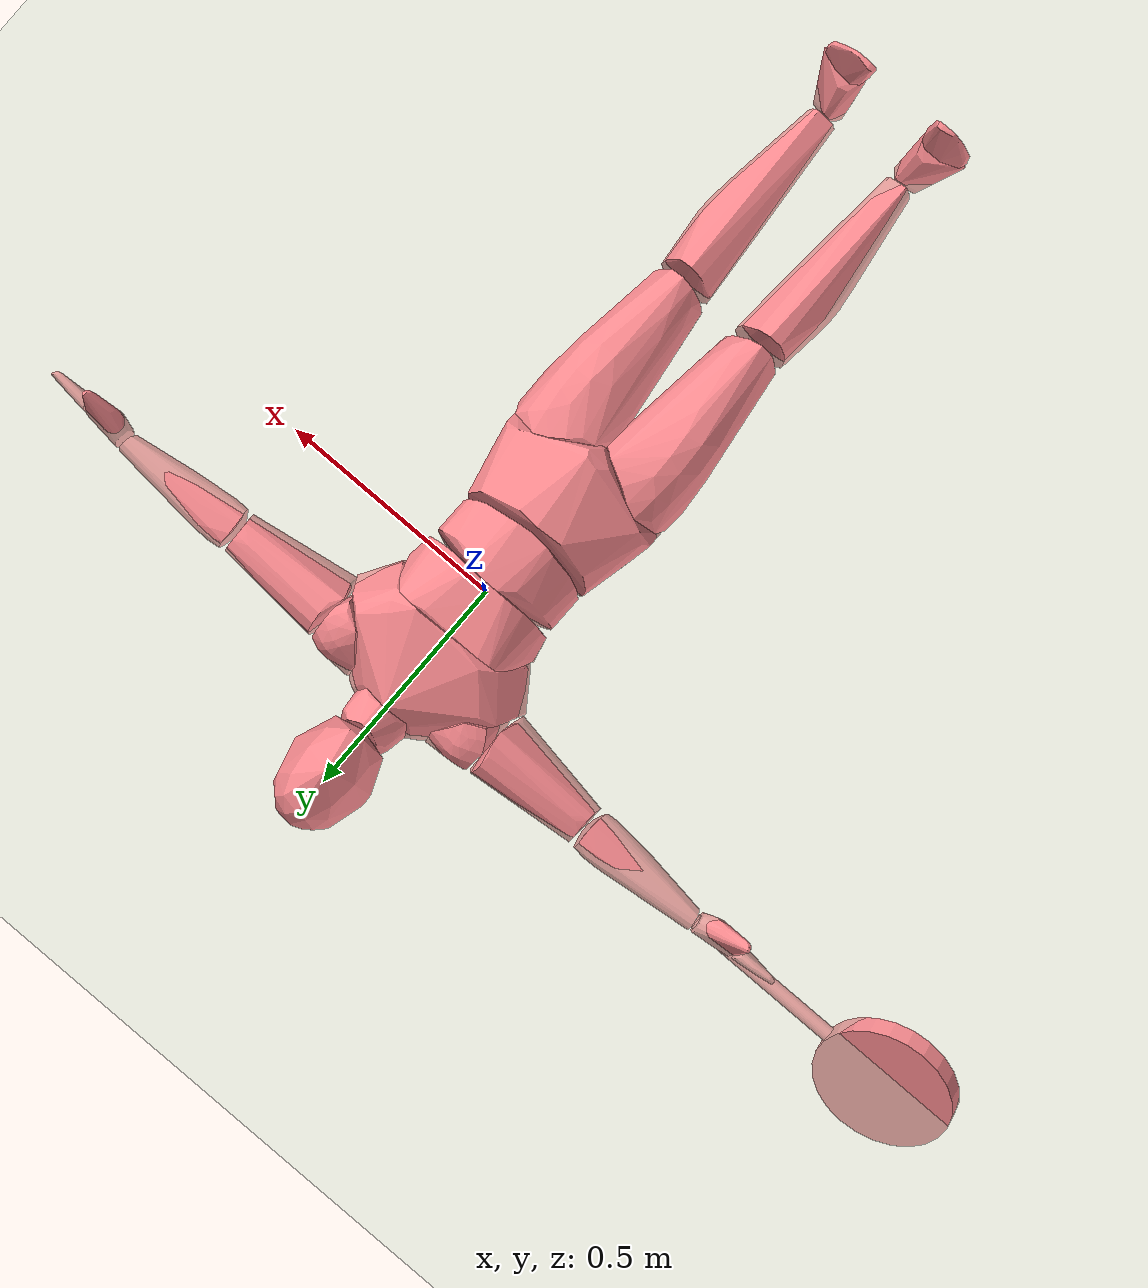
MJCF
<!-- Real Djokovic with gender=male (1.88m) semi-western grip, heavy racket head (x2 mass)-->
<mujoco model="humanoid">
  <compiler angle="degree" inertiafromgeom="true" coordinate="local"/>
  <visual>
    <headlight ambient=".4 .4 .4" diffuse=".8 .8 .8" specular="0.3 0.3 0.3"/>
    <map znear=".01"/>
    <quality shadowsize="2048"/>
  </visual>
  <default>
    <joint damping="0.0" armature="0.01" stiffness="0.0" limited="true"/>
    <geom conaffinity="7" condim="1" contype="7" margin="0.001" rgba=".98 .54 .56 1."/>
    <default class="actor1">
      <geom rgba="0.8 0.6 0.4 0.5"/>
    </default>
    <default class="actor2">
      <geom rgba="0.2 0.706 0.0 0.5"/>
    </default>
  </default>
  <statistic extent="3" center="0 0 1"/>
  <option timestep="0.00222222222"/>
  <asset>
    <texture type="skybox" builtin="gradient" rgb1=".4 .5 .6" rgb2="0 0 0" width="100" height="100"/>
    <texture builtin="flat" height="1278" mark="cross" markrgb="1 1 1" name="texgeom" random="0.01" rgb1="0.8 0.6 0.4" rgb2="0.8 0.6 0.4" type="cube" width="127"/>
    <texture name="grid_new" type="2d" builtin="checker" rgb1=".1 .3 .2" rgb2=".2 .4 .3" width="1000" height="1000" mark="none" markrgb=".8 .6 .4"/>
    <material name="grid_new" texture="grid_new" texrepeat="0.2 0.2" texuniform="true" reflectance=".2"/>
    <mesh file="mesh/49e39740-d0fd-44c2-ad1d-5dcbae398375/geom/Pelvis.stl" name="Pelvis_mesh"/>
    <mesh file="mesh/49e39740-d0fd-44c2-ad1d-5dcbae398375/geom/L_Hip.stl" name="L_Hip_mesh"/>
    <mesh file="mesh/49e39740-d0fd-44c2-ad1d-5dcbae398375/geom/R_Hip.stl" name="R_Hip_mesh"/>
    <mesh file="mesh/49e39740-d0fd-44c2-ad1d-5dcbae398375/geom/Torso.stl" name="Torso_mesh"/>
    <mesh file="mesh/49e39740-d0fd-44c2-ad1d-5dcbae398375/geom/L_Knee.stl" name="L_Knee_mesh"/>
    <mesh file="mesh/49e39740-d0fd-44c2-ad1d-5dcbae398375/geom/R_Knee.stl" name="R_Knee_mesh"/>
    <mesh file="mesh/49e39740-d0fd-44c2-ad1d-5dcbae398375/geom/Spine.stl" name="Spine_mesh"/>
    <mesh file="mesh/49e39740-d0fd-44c2-ad1d-5dcbae398375/geom/L_Ankle.stl" name="L_Ankle_mesh"/>
    <mesh file="mesh/49e39740-d0fd-44c2-ad1d-5dcbae398375/geom/R_Ankle.stl" name="R_Ankle_mesh"/>
    <mesh file="mesh/49e39740-d0fd-44c2-ad1d-5dcbae398375/geom/Chest.stl" name="Chest_mesh"/>
    <mesh file="mesh/49e39740-d0fd-44c2-ad1d-5dcbae398375/geom/L_Toe.stl" name="L_Toe_mesh"/>
    <mesh file="mesh/49e39740-d0fd-44c2-ad1d-5dcbae398375/geom/R_Toe.stl" name="R_Toe_mesh"/>
    <mesh file="mesh/49e39740-d0fd-44c2-ad1d-5dcbae398375/geom/Neck.stl" name="Neck_mesh"/>
    <mesh file="mesh/49e39740-d0fd-44c2-ad1d-5dcbae398375/geom/L_Thorax.stl" name="L_Thorax_mesh"/>
    <mesh file="mesh/49e39740-d0fd-44c2-ad1d-5dcbae398375/geom/R_Thorax.stl" name="R_Thorax_mesh"/>
    <mesh file="mesh/49e39740-d0fd-44c2-ad1d-5dcbae398375/geom/Head.stl" name="Head_mesh"/>
    <mesh file="mesh/49e39740-d0fd-44c2-ad1d-5dcbae398375/geom/L_Shoulder.stl" name="L_Shoulder_mesh"/>
    <mesh file="mesh/49e39740-d0fd-44c2-ad1d-5dcbae398375/geom/R_Shoulder.stl" name="R_Shoulder_mesh"/>
    <mesh file="mesh/49e39740-d0fd-44c2-ad1d-5dcbae398375/geom/L_Elbow.stl" name="L_Elbow_mesh"/>
    <mesh file="mesh/49e39740-d0fd-44c2-ad1d-5dcbae398375/geom/R_Elbow.stl" name="R_Elbow_mesh"/>
    <mesh file="mesh/49e39740-d0fd-44c2-ad1d-5dcbae398375/geom/L_Wrist.stl" name="L_Wrist_mesh"/>
    <mesh file="mesh/49e39740-d0fd-44c2-ad1d-5dcbae398375/geom/R_Wrist.stl" name="R_Wrist_mesh"/>
    <mesh file="mesh/49e39740-d0fd-44c2-ad1d-5dcbae398375/geom/L_Hand.stl" name="L_Hand_mesh"/>
    <mesh file="mesh/49e39740-d0fd-44c2-ad1d-5dcbae398375/geom/R_Hand.stl" name="R_Hand_mesh"/>
  </asset>
  <worldbody>
    <light cutoff="100" diffuse="1 1 1" dir="-0 0 -1.3" directional="true" exponent="1" pos="0 0 1.3" specular=".1 .1 .1"/>
    <geom conaffinity="1" condim="3" name="floor" pos="0 0 0" rgba="0.8 0.9 0.8 1" size="100 100 .2" type="plane" material="grid_new"/>
    <body name="Pelvis" pos="-0.0022 -0.2358 0.0239" quat="1.0000 0.0000 0.0000 0.0000">
      <freejoint name="Pelvis"/>
      <geom type="mesh" mesh="Pelvis_mesh" density="900" contype="1" conaffinity="1"/>
      <body name="L_Hip" pos="0.0605 -0.0829 -0.0239" quat="1.0000 0.0000 0.0000 0.0000">
        <joint name="L_Hip_x" type="hinge" pos="0 0 0" axis="1 0 0" stiffness="500" damping="50" armature="0.02" range="-180.0000 180.0000"/>
        <joint name="L_Hip_y" type="hinge" pos="0 0 0" axis="0 1 0" stiffness="500" damping="50" armature="0.02" range="-180.0000 180.0000"/>
        <joint name="L_Hip_z" type="hinge" pos="0 0 0" axis="0 0 1" stiffness="500" damping="50" armature="0.02" range="-180.0000 180.0000"/>
        <geom type="mesh" mesh="L_Hip_mesh" density="900" contype="1" conaffinity="1"/>
        <body name="L_Knee" pos="0.051 -0.4175 0.0079" quat="1.0000 0.0000 0.0000 0.0000">
          <joint name="L_Knee_x" type="hinge" pos="0 0 0" axis="1 0 0" stiffness="500" damping="50" armature="0.02" range="-180.0000 180.0000"/>
          <joint name="L_Knee_y" type="hinge" pos="0 0 0" axis="0 1 0" stiffness="500" damping="50" armature="0.02" range="-180.0000 180.0000"/>
          <joint name="L_Knee_z" type="hinge" pos="0 0 0" axis="0 0 1" stiffness="500" damping="50" armature="0.02" range="-180.0000 180.0000"/>
          <geom type="mesh" mesh="L_Knee_mesh" density="900" contype="1" conaffinity="1"/>
          <body name="L_Ankle" pos="-0.0144 -0.4584 -0.037" quat="1.0000 0.0000 0.0000 0.0000">
            <joint name="L_Ankle_x" type="hinge" pos="0 0 0" axis="1 0 0" stiffness="400" damping="40" armature="0.02" range="-180.0000 180.0000"/>
            <joint name="L_Ankle_y" type="hinge" pos="0 0 0" axis="0 1 0" stiffness="400" damping="40" armature="0.02" range="-180.0000 180.0000"/>
            <joint name="L_Ankle_z" type="hinge" pos="0 0 0" axis="0 0 1" stiffness="400" damping="40" armature="0.02" range="-180.0000 180.0000"/>
            <geom type="mesh" mesh="L_Ankle_mesh" density="900" contype="1" conaffinity="1"/>
            <body name="L_Toe" pos="0.0491 -0.0651 0.1268" quat="1.0000 0.0000 0.0000 0.0000">
              <joint name="L_Toe_x" type="hinge" pos="0 0 0" axis="1 0 0" stiffness="200" damping="20" armature="0.02" range="-180.0000 180.0000"/>
              <joint name="L_Toe_y" type="hinge" pos="0 0 0" axis="0 1 0" stiffness="200" damping="20" armature="0.02" range="-180.0000 180.0000"/>
              <joint name="L_Toe_z" type="hinge" pos="0 0 0" axis="0 0 1" stiffness="200" damping="20" armature="0.02" range="-180.0000 180.0000"/>
              <geom type="mesh" mesh="L_Toe_mesh" density="900" contype="1" conaffinity="1"/>
            </body>
          </body>
        </body>
      </body>
      <body name="R_Hip" pos="-0.0619 -0.0897 -0.0213" quat="1.0000 0.0000 0.0000 0.0000">
        <joint name="R_Hip_x" type="hinge" pos="0 0 0" axis="1 0 0" stiffness="500" damping="50" armature="0.02" range="-180.0000 180.0000"/>
        <joint name="R_Hip_y" type="hinge" pos="0 0 0" axis="0 1 0" stiffness="500" damping="50" armature="0.02" range="-180.0000 180.0000"/>
        <joint name="R_Hip_z" type="hinge" pos="0 0 0" axis="0 0 1" stiffness="500" damping="50" armature="0.02" range="-180.0000 180.0000"/>
        <geom type="mesh" mesh="R_Hip_mesh" density="900" contype="1" conaffinity="1"/>
        <body name="R_Knee" pos="-0.0495 -0.4124 -0.0066" quat="1.0000 0.0000 0.0000 0.0000">
          <joint name="R_Knee_x" type="hinge" pos="0 0 0" axis="1 0 0" stiffness="500" damping="50" armature="0.02" range="-180.0000 180.0000"/>
          <joint name="R_Knee_y" type="hinge" pos="0 0 0" axis="0 1 0" stiffness="500" damping="50" armature="0.02" range="-180.0000 180.0000"/>
          <joint name="R_Knee_z" type="hinge" pos="0 0 0" axis="0 0 1" stiffness="500" damping="50" armature="0.02" range="-180.0000 180.0000"/>
          <geom type="mesh" mesh="R_Knee_mesh" density="900" contype="1" conaffinity="1"/>
          <body name="R_Ankle" pos="0.0193 -0.4509 -0.0348" quat="1.0000 0.0000 0.0000 0.0000">
            <joint name="R_Ankle_x" type="hinge" pos="0 0 0" axis="1 0 0" stiffness="400" damping="40" armature="0.02" range="-180.0000 180.0000"/>
            <joint name="R_Ankle_y" type="hinge" pos="0 0 0" axis="0 1 0" stiffness="400" damping="40" armature="0.02" range="-180.0000 180.0000"/>
            <joint name="R_Ankle_z" type="hinge" pos="0 0 0" axis="0 0 1" stiffness="400" damping="40" armature="0.02" range="-180.0000 180.0000"/>
            <geom type="mesh" mesh="R_Ankle_mesh" density="900" contype="1" conaffinity="1"/>
            <body name="R_Toe" pos="-0.0395 -0.0667 0.1363" quat="1.0000 0.0000 0.0000 0.0000">
              <joint name="R_Toe_x" type="hinge" pos="0 0 0" axis="1 0 0" stiffness="200" damping="20" armature="0.02" range="-180.0000 180.0000"/>
              <joint name="R_Toe_y" type="hinge" pos="0 0 0" axis="0 1 0" stiffness="200" damping="20" armature="0.02" range="-180.0000 180.0000"/>
              <joint name="R_Toe_z" type="hinge" pos="0 0 0" axis="0 0 1" stiffness="200" damping="20" armature="0.02" range="-180.0000 180.0000"/>
              <geom type="mesh" mesh="R_Toe_mesh" density="900" contype="1" conaffinity="1"/>
            </body>
          </body>
        </body>
      </body>
      <body name="Torso" pos="0.0046 0.1203 -0.0362" quat="1.0000 0.0000 0.0000 0.0000">
        <joint name="Torso_x" type="hinge" pos="0 0 0" axis="1 0 0" stiffness="1000" damping="100" armature="0.02" range="-180.0000 180.0000"/>
        <joint name="Torso_y" type="hinge" pos="0 0 0" axis="0 1 0" stiffness="1000" damping="100" armature="0.02" range="-180.0000 180.0000"/>
        <joint name="Torso_z" type="hinge" pos="0 0 0" axis="0 0 1" stiffness="1000" damping="100" armature="0.02" range="-180.0000 180.0000"/>
        <geom type="mesh" mesh="Torso_mesh" density="900" contype="1" conaffinity="1"/>
        <body name="Spine" pos="0.0035 0.1382 0.0272" quat="1.0000 0.0000 0.0000 0.0000">
          <joint name="Spine_x" type="hinge" pos="0 0 0" axis="1 0 0" stiffness="1000" damping="100" armature="0.02" range="-180.0000 180.0000"/>
          <joint name="Spine_y" type="hinge" pos="0 0 0" axis="0 1 0" stiffness="1000" damping="100" armature="0.02" range="-180.0000 180.0000"/>
          <joint name="Spine_z" type="hinge" pos="0 0 0" axis="0 0 1" stiffness="1000" damping="100" armature="0.02" range="-180.0000 180.0000"/>
          <geom type="mesh" mesh="Spine_mesh" density="900" contype="1" conaffinity="1"/>
          <body name="Chest" pos="-0.0022 0.0569 0.0012" quat="1.0000 0.0000 0.0000 0.0000">
            <joint name="Chest_x" type="hinge" pos="0 0 0" axis="1 0 0" stiffness="1000" damping="100" armature="0.02" range="-180.0000 180.0000"/>
            <joint name="Chest_y" type="hinge" pos="0 0 0" axis="0 1 0" stiffness="1000" damping="100" armature="0.02" range="-180.0000 180.0000"/>
            <joint name="Chest_z" type="hinge" pos="0 0 0" axis="0 0 1" stiffness="1000" damping="100" armature="0.02" range="-180.0000 180.0000"/>
            <geom type="mesh" mesh="Chest_mesh" density="900" contype="1" conaffinity="1"/>
            <body name="Neck" pos="-0.0136 0.2211 -0.022" quat="1.0000 0.0000 0.0000 0.0000">
              <joint name="Neck_x" type="hinge" pos="0 0 0" axis="1 0 0" stiffness="100" damping="10" armature="0.02" range="-180.0000 180.0000"/>
              <joint name="Neck_y" type="hinge" pos="0 0 0" axis="0 1 0" stiffness="100" damping="10" armature="0.02" range="-180.0000 180.0000"/>
              <joint name="Neck_z" type="hinge" pos="0 0 0" axis="0 0 1" stiffness="100" damping="10" armature="0.02" range="-180.0000 180.0000"/>
              <geom type="mesh" mesh="Neck_mesh" density="900" contype="1" conaffinity="1"/>
              <body name="Head" pos="0.0113 0.1028 0.0563" quat="1.0000 0.0000 0.0000 0.0000">
                <joint name="Head_x" type="hinge" pos="0 0 0" axis="1 0 0" stiffness="100" damping="10" armature="0.02" range="-180.0000 180.0000"/>
                <joint name="Head_y" type="hinge" pos="0 0 0" axis="0 1 0" stiffness="100" damping="10" armature="0.02" range="-180.0000 180.0000"/>
                <joint name="Head_z" type="hinge" pos="0 0 0" axis="0 0 1" stiffness="100" damping="10" armature="0.02" range="-180.0000 180.0000"/>
                <geom type="mesh" mesh="Head_mesh" density="900" contype="1" conaffinity="1"/>
              </body>
            </body>
            <body name="L_Thorax" pos="0.0717 0.1168 -0.0143" quat="1.0000 0.0000 0.0000 0.0000">
              <joint name="L_Thorax_x" type="hinge" pos="0 0 0" axis="1 0 0" stiffness="400" damping="40" armature="0.02" range="-180.0000 180.0000"/>
              <joint name="L_Thorax_y" type="hinge" pos="0 0 0" axis="0 1 0" stiffness="400" damping="40" armature="0.02" range="-180.0000 180.0000"/>
              <joint name="L_Thorax_z" type="hinge" pos="0 0 0" axis="0 0 1" stiffness="400" damping="40" armature="0.02" range="-180.0000 180.0000"/>
              <geom type="mesh" mesh="L_Thorax_mesh" density="900" contype="1" conaffinity="1"/>
              <body name="L_Shoulder" pos="0.1225 0.0498 -0.0166" quat="1.0000 0.0000 0.0000 0.0000">
                <joint name="L_Shoulder_x" type="hinge" pos="0 0 0" axis="1 0 0" stiffness="400" damping="40" armature="0.02" range="-180.0000 180.0000"/>
                <joint name="L_Shoulder_y" type="hinge" pos="0 0 0" axis="0 1 0" stiffness="400" damping="40" armature="0.02" range="-180.0000 180.0000"/>
                <joint name="L_Shoulder_z" type="hinge" pos="0 0 0" axis="0 0 1" stiffness="400" damping="40" armature="0.02" range="-180.0000 180.0000"/>
                <geom type="mesh" mesh="L_Shoulder_mesh" density="900" contype="1" conaffinity="1"/>
                <body name="L_Elbow" pos="0.2713 -0.0215 -0.0239" quat="1.0000 0.0000 0.0000 0.0000">
                  <joint name="L_Elbow_x" type="hinge" pos="0 0 0" axis="1 0 0" stiffness="300" damping="30" armature="0.02" range="-720.0000 720.0000"/>
                  <joint name="L_Elbow_y" type="hinge" pos="0 0 0" axis="0 1 0" stiffness="300" damping="30" armature="0.02" range="-720.0000 720.0000"/>
                  <joint name="L_Elbow_z" type="hinge" pos="0 0 0" axis="0 0 1" stiffness="300" damping="30" armature="0.02" range="-720.0000 720.0000"/>
                  <geom type="mesh" mesh="L_Elbow_mesh" density="900" contype="1" conaffinity="1"/>
                  <body name="L_Wrist" pos="0.2809 0.015 -0.006" quat="1.0000 0.0000 0.0000 0.0000">
                    <joint name="L_Wrist_x" type="hinge" pos="0 0 0" axis="1 0 0" stiffness="100" damping="10" armature="0.02" range="-180.0000 180.0000"/>
                    <joint name="L_Wrist_y" type="hinge" pos="0 0 0" axis="0 1 0" stiffness="100" damping="10" armature="0.02" range="-180.0000 180.0000"/>
                    <joint name="L_Wrist_z" type="hinge" pos="0 0 0" axis="0 0 1" stiffness="100" damping="10" armature="0.02" range="-180.0000 180.0000"/>
                    <geom type="mesh" mesh="L_Wrist_mesh" density="900" contype="1" conaffinity="1"/>
                    <body name="L_Hand" pos="0.0913 -0.0115 -0.0167" quat="1.0000 0.0000 0.0000 0.0000">
                      <joint name="L_Hand_x" type="hinge" pos="0 0 0" axis="1 0 0" stiffness="100" damping="10" armature="0.02" range="-180.0000 180.0000"/>
                      <joint name="L_Hand_y" type="hinge" pos="0 0 0" axis="0 1 0" stiffness="100" damping="10" armature="0.02" range="-180.0000 180.0000"/>
                      <joint name="L_Hand_z" type="hinge" pos="0 0 0" axis="0 0 1" stiffness="100" damping="10" armature="0.02" range="-180.0000 180.0000"/>
                      <geom type="mesh" mesh="L_Hand_mesh" density="900" contype="1" conaffinity="1"/>
                    </body>
                  </body>
                </body>
              </body>
            </body>
            <body name="R_Thorax" pos="-0.0826 0.1147 -0.0209" quat="1.0000 0.0000 0.0000 0.0000">
              <joint name="R_Thorax_x" type="hinge" pos="0 0 0" axis="1 0 0" stiffness="400" damping="40" armature="0.02" range="-180.0000 180.0000"/>
              <joint name="R_Thorax_y" type="hinge" pos="0 0 0" axis="0 1 0" stiffness="400" damping="40" armature="0.02" range="-180.0000 180.0000"/>
              <joint name="R_Thorax_z" type="hinge" pos="0 0 0" axis="0 0 1" stiffness="400" damping="40" armature="0.02" range="-180.0000 180.0000"/>
              <geom type="mesh" mesh="R_Thorax_mesh" density="900" contype="1" conaffinity="1"/>
              <body name="R_Shoulder" pos="-0.1138 0.0525 -0.0064" quat="1.0000 0.0000 0.0000 0.0000">
                <joint name="R_Shoulder_x" type="hinge" pos="0 0 0" axis="1 0 0" stiffness="400" damping="40" armature="0.02" range="-180.0000 180.0000"/>
                <joint name="R_Shoulder_y" type="hinge" pos="0 0 0" axis="0 1 0" stiffness="400" damping="40" armature="0.02" range="-180.0000 180.0000"/>
                <joint name="R_Shoulder_z" type="hinge" pos="0 0 0" axis="0 0 1" stiffness="400" damping="40" armature="0.02" range="-180.0000 180.0000"/>
                <geom type="mesh" mesh="R_Shoulder_mesh" density="900" contype="1" conaffinity="1"/>
                <body name="R_Elbow" pos="-0.2758 -0.0235 -0.0336" quat="1.0000 0.0000 0.0000 0.0000">
                  <joint name="R_Elbow_x" type="hinge" pos="0 0 0" axis="1 0 0" stiffness="300" damping="30" armature="0.02" range="-180.0000 90.0000"/>
                  <joint name="R_Elbow_y" type="hinge" pos="0 0 0" axis="0 1 0" stiffness="300" damping="30" armature="0.02" range="-720.0000 720.0000"/>
                  <joint name="R_Elbow_z" type="hinge" pos="0 0 0" axis="0 0 1" stiffness="300" damping="30" armature="0.02" range="-720.0000 720.0000"/>
                  <geom type="mesh" mesh="R_Elbow_mesh" density="900" contype="1" conaffinity="1"/>
                  <body name="R_Wrist" pos="-0.2854 0.0078 -0.0049" quat="1.0000 0.0000 0.0000 0.0000">
                    <joint name="R_Wrist_x" type="hinge" pos="0 0 0" axis="1 0 0" stiffness="100" damping="10" armature="0.02" range="-10.0000 10.0000"/>
                    <joint name="R_Wrist_y" type="hinge" pos="0 0 0" axis="0 1 0" stiffness="100" damping="10" armature="0.02" range="-45.0000 45.0000"/>
                    <joint name="R_Wrist_z" type="hinge" pos="0 0 0" axis="0 0 1" stiffness="100" damping="10" armature="0.02" range="-90.0000 90.0000"/>
                    <geom type="mesh" mesh="R_Wrist_mesh" density="900" contype="1" conaffinity="1"/>
                    <body name="R_Hand" pos="-0.0926 -0.0091 -0.0109" quat="1.0000 0.0000 0.0000 0.0000">
                      <joint name="R_Hand_x" type="hinge" pos="0 0 0" axis="1 0 0" stiffness="100" damping="10" armature="0.02" range="-180.0000 180.0000"/>
                      <joint name="R_Hand_y" type="hinge" pos="0 0 0" axis="0 1 0" stiffness="100" damping="10" armature="0.02" range="-180.0000 180.0000"/>
                      <joint name="R_Hand_z" type="hinge" pos="0 0 0" axis="0 0 1" stiffness="100" damping="10" armature="0.02" range="-180.0000 180.0000"/>
                      <geom type="mesh" mesh="R_Hand_mesh" density="900" contype="1" conaffinity="1"/>
                    </body>
                    <body name="Racket" pos="-0.5 0 0">
                      <geom type="cylinder" fromto="0.5 0 0 0.15 0 0" size="0.016" density="500"/>
                      <geom type="cylinder" fromto="0 -0.015 -0.015 0 0.015 0.015" size="0.15" density="150"/>
                    </body>
                  </body>
                </body>
              </body>
            </body>
          </body>
        </body>
      </body>
    </body>
  </worldbody>
  <actuator>
    <motor name="L_Hip_x" joint="L_Hip_x" gear="1"/>
    <motor name="L_Hip_y" joint="L_Hip_y" gear="1"/>
    <motor name="L_Hip_z" joint="L_Hip_z" gear="1"/>
    <motor name="L_Knee_x" joint="L_Knee_x" gear="1"/>
    <motor name="L_Knee_y" joint="L_Knee_y" gear="1"/>
    <motor name="L_Knee_z" joint="L_Knee_z" gear="1"/>
    <motor name="L_Ankle_x" joint="L_Ankle_x" gear="1"/>
    <motor name="L_Ankle_y" joint="L_Ankle_y" gear="1"/>
    <motor name="L_Ankle_z" joint="L_Ankle_z" gear="1"/>
    <motor name="L_Toe_x" joint="L_Toe_x" gear="1"/>
    <motor name="L_Toe_y" joint="L_Toe_y" gear="1"/>
    <motor name="L_Toe_z" joint="L_Toe_z" gear="1"/>
    <motor name="R_Hip_x" joint="R_Hip_x" gear="1"/>
    <motor name="R_Hip_y" joint="R_Hip_y" gear="1"/>
    <motor name="R_Hip_z" joint="R_Hip_z" gear="1"/>
    <motor name="R_Knee_x" joint="R_Knee_x" gear="1"/>
    <motor name="R_Knee_y" joint="R_Knee_y" gear="1"/>
    <motor name="R_Knee_z" joint="R_Knee_z" gear="1"/>
    <motor name="R_Ankle_x" joint="R_Ankle_x" gear="1"/>
    <motor name="R_Ankle_y" joint="R_Ankle_y" gear="1"/>
    <motor name="R_Ankle_z" joint="R_Ankle_z" gear="1"/>
    <motor name="R_Toe_x" joint="R_Toe_x" gear="1"/>
    <motor name="R_Toe_y" joint="R_Toe_y" gear="1"/>
    <motor name="R_Toe_z" joint="R_Toe_z" gear="1"/>
    <motor name="Torso_x" joint="Torso_x" gear="1"/>
    <motor name="Torso_y" joint="Torso_y" gear="1"/>
    <motor name="Torso_z" joint="Torso_z" gear="1"/>
    <motor name="Spine_x" joint="Spine_x" gear="1"/>
    <motor name="Spine_y" joint="Spine_y" gear="1"/>
    <motor name="Spine_z" joint="Spine_z" gear="1"/>
    <motor name="Chest_x" joint="Chest_x" gear="1"/>
    <motor name="Chest_y" joint="Chest_y" gear="1"/>
    <motor name="Chest_z" joint="Chest_z" gear="1"/>
    <motor name="Neck_x" joint="Neck_x" gear="1"/>
    <motor name="Neck_y" joint="Neck_y" gear="1"/>
    <motor name="Neck_z" joint="Neck_z" gear="1"/>
    <motor name="Head_x" joint="Head_x" gear="1"/>
    <motor name="Head_y" joint="Head_y" gear="1"/>
    <motor name="Head_z" joint="Head_z" gear="1"/>
    <motor name="L_Thorax_x" joint="L_Thorax_x" gear="1"/>
    <motor name="L_Thorax_y" joint="L_Thorax_y" gear="1"/>
    <motor name="L_Thorax_z" joint="L_Thorax_z" gear="1"/>
    <motor name="L_Shoulder_x" joint="L_Shoulder_x" gear="1"/>
    <motor name="L_Shoulder_y" joint="L_Shoulder_y" gear="1"/>
    <motor name="L_Shoulder_z" joint="L_Shoulder_z" gear="1"/>
    <motor name="L_Elbow_x" joint="L_Elbow_x" gear="1"/>
    <motor name="L_Elbow_y" joint="L_Elbow_y" gear="1"/>
    <motor name="L_Elbow_z" joint="L_Elbow_z" gear="1"/>
    <motor name="L_Wrist_x" joint="L_Wrist_x" gear="1"/>
    <motor name="L_Wrist_y" joint="L_Wrist_y" gear="1"/>
    <motor name="L_Wrist_z" joint="L_Wrist_z" gear="1"/>
    <motor name="L_Hand_x" joint="L_Hand_x" gear="1"/>
    <motor name="L_Hand_y" joint="L_Hand_y" gear="1"/>
    <motor name="L_Hand_z" joint="L_Hand_z" gear="1"/>
    <motor name="R_Thorax_x" joint="R_Thorax_x" gear="1"/>
    <motor name="R_Thorax_y" joint="R_Thorax_y" gear="1"/>
    <motor name="R_Thorax_z" joint="R_Thorax_z" gear="1"/>
    <motor name="R_Shoulder_x" joint="R_Shoulder_x" gear="1"/>
    <motor name="R_Shoulder_y" joint="R_Shoulder_y" gear="1"/>
    <motor name="R_Shoulder_z" joint="R_Shoulder_z" gear="1"/>
    <motor name="R_Elbow_x" joint="R_Elbow_x" gear="1"/>
    <motor name="R_Elbow_y" joint="R_Elbow_y" gear="1"/>
    <motor name="R_Elbow_z" joint="R_Elbow_z" gear="1"/>
    <motor name="R_Wrist_x" joint="R_Wrist_x" gear="1"/>
    <motor name="R_Wrist_y" joint="R_Wrist_y" gear="1"/>
    <motor name="R_Wrist_z" joint="R_Wrist_z" gear="1"/>
    <motor name="R_Hand_x" joint="R_Hand_x" gear="1"/>
    <motor name="R_Hand_y" joint="R_Hand_y" gear="1"/>
    <motor name="R_Hand_z" joint="R_Hand_z" gear="1"/>
  </actuator>
  <contact>
    <exclude body1="Chest" body2="L_Shoulder"/>
    <exclude body1="Chest" body2="R_Shoulder"/>
    <exclude body1="Chest" body2="R_Thorax"/>
    <exclude body1="Chest" body2="L_Thorax"/>
    <exclude body1="L_Hip" body2="Pelvis"/>
    <exclude body1="R_Hip" body2="Pelvis"/>
    <exclude body1="Torso" body2="Pelvis"/>
    <exclude body1="L_Knee" body2="L_Hip"/>
    <exclude body1="R_Knee" body2="R_Hip"/>
    <exclude body1="Spine" body2="Torso"/>
    <exclude body1="L_Ankle" body2="L_Knee"/>
    <exclude body1="R_Ankle" body2="R_Knee"/>
    <exclude body1="Chest" body2="Spine"/>
    <exclude body1="L_Toe" body2="L_Ankle"/>
    <exclude body1="R_Toe" body2="R_Ankle"/>
    <exclude body1="Neck" body2="Chest"/>
    <exclude body1="L_Thorax" body2="Chest"/>
    <exclude body1="R_Thorax" body2="Chest"/>
    <exclude body1="Head" body2="Neck"/>
    <exclude body1="L_Shoulder" body2="L_Thorax"/>
    <exclude body1="R_Shoulder" body2="R_Thorax"/>
    <exclude body1="L_Elbow" body2="L_Shoulder"/>
    <exclude body1="R_Elbow" body2="R_Shoulder"/>
    <exclude body1="L_Wrist" body2="L_Elbow"/>
    <exclude body1="R_Wrist" body2="R_Elbow"/>
    <exclude body1="L_Hand" body2="L_Wrist"/>
    <exclude body1="R_Hand" body2="R_Wrist"/>
  </contact>
  <size njmax="2500" nconmax="500"/>
</mujoco>
